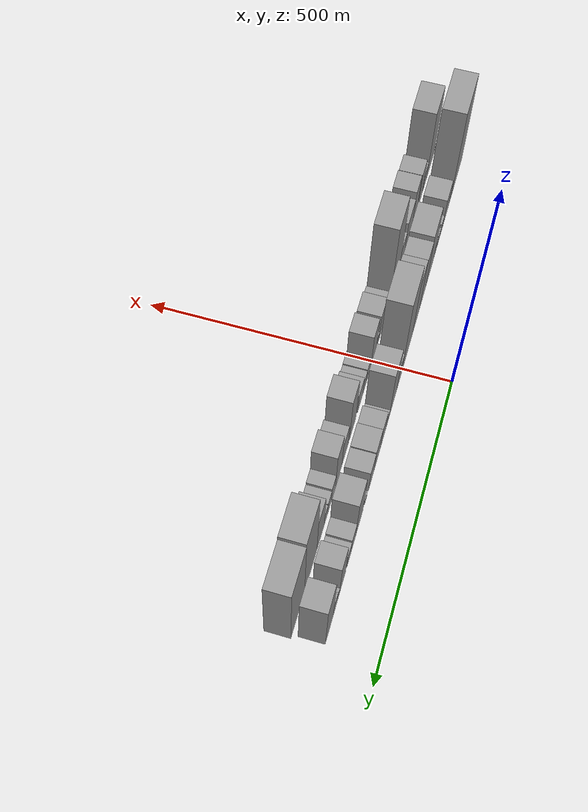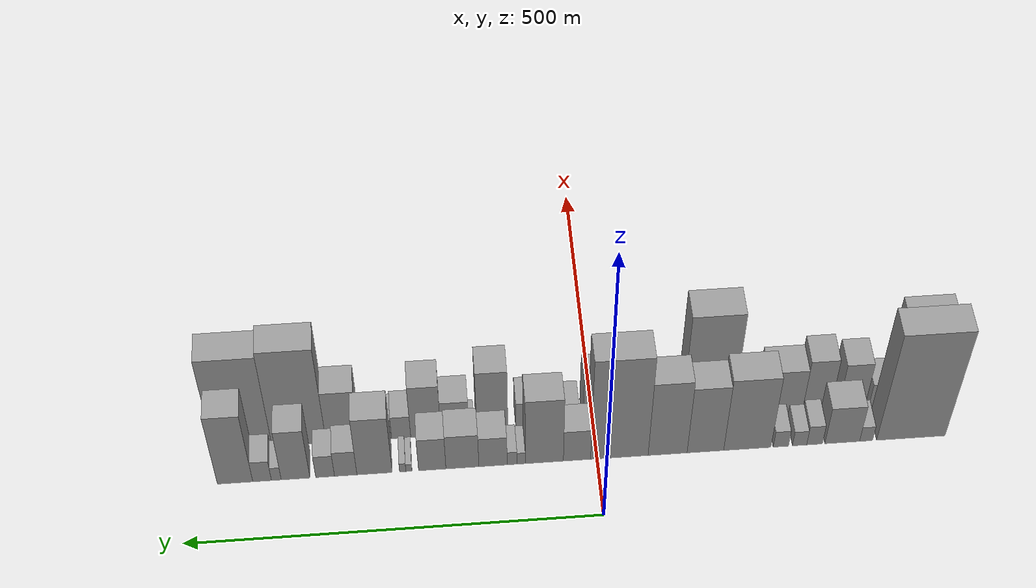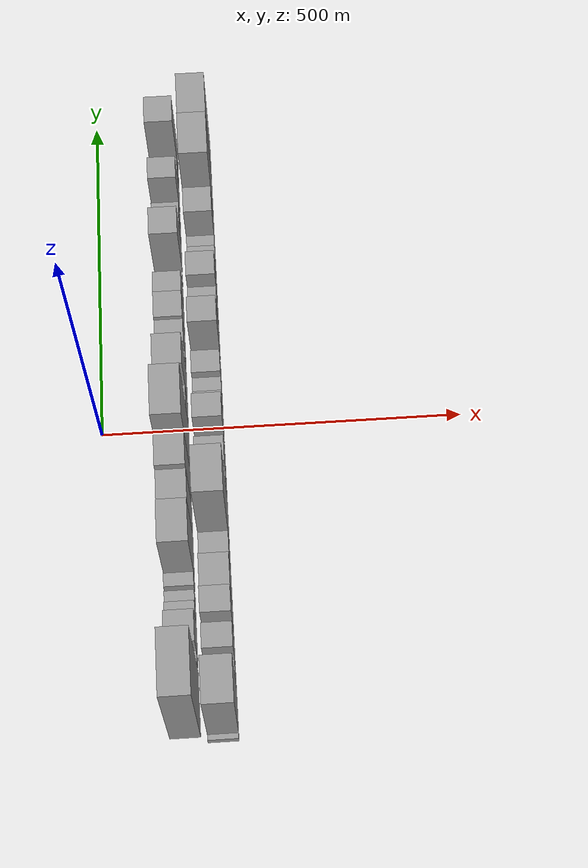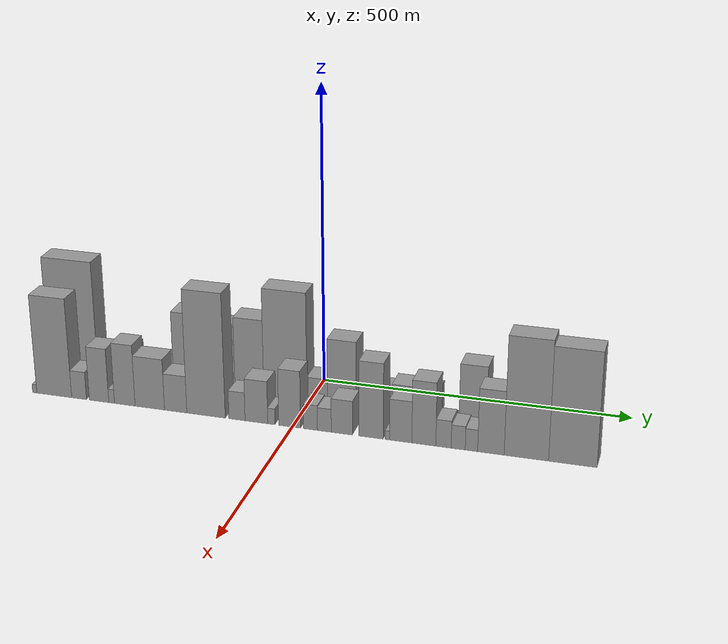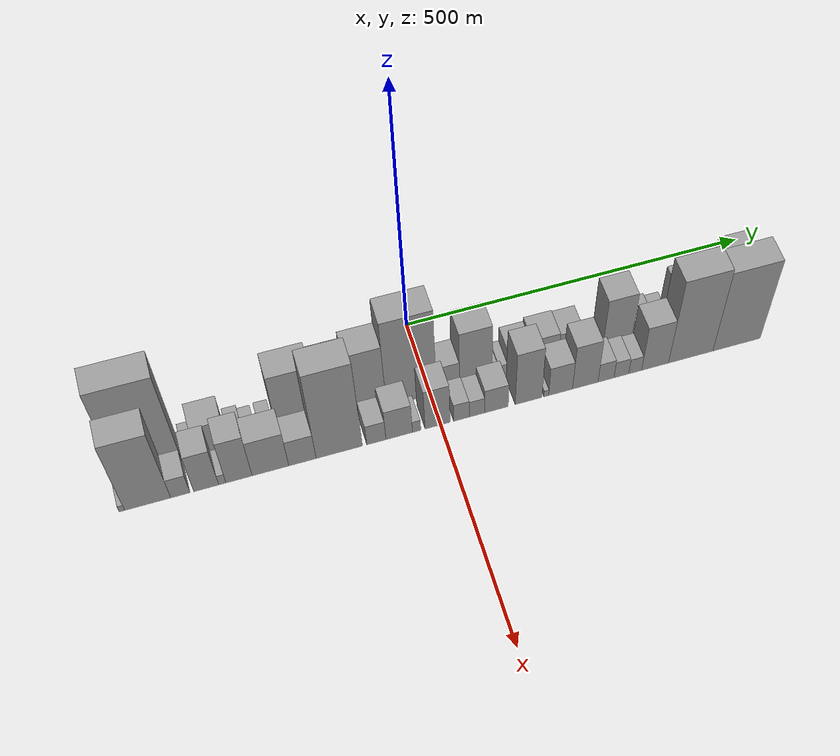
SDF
<sdf version="1.6">
 <world name="default">
  <scene>
   <sky><clouds><speed>12</speed></clouds></sky>
   <ambient>0.4 0.4 0.4 1</ambient>
   <background>0.7 0.7 0.7 1</background>
   <shadows>1</shadows>
  </scene>
  <gravity>0 0 -9.8066</gravity>
  <magnetic_field>6e-06 2.3e-05 -4.2e-05</magnetic_field>
  <physics default="0" name="default_physics" type="ode">
   <ode>
    <solver>
     <type>quick</type>
     <iters>10</iters>
     <sor>1.0</sor>
     <use_dynamic_moi_rescaling>0</use_dynamic_moi_rescaling>
    </solver>
    <constraints>
     <cfm>0</cfm>
     <erp>0.2</erp>
     <contact_max_correcting_vel>100</contact_max_correcting_vel>
     <contact_surface_layer>0.001</contact_surface_layer>
    </constraints>
   </ode>
   <max_step_size>0.004</max_step_size>
   <real_time_factor>1</real_time_factor>
   <real_time_update_rate>250</real_time_update_rate>
  </physics>
  <light name="sun" type="directional">
   <pose>0 0 10 0 0 0</pose>
   <diffuse>0.8 0.8 0.8 1</diffuse>
   <specular>0.2 0.2 0.2 1</specular>
   <attenuation>
    <range>1000</range>
    <constant>0.9</constant>
    <linear>0.01</linear>
    <quadratic>0.001</quadratic>
   </attenuation>
   <direction>-0.5 0.1 -0.9</direction>
  </light>
  <model name="building_1">
   <static>1</static>
   <pose>100.0000 -387.4000 0 0.000000 0.000000 0.000000</pose>
   <link name="link">
    <pose>0 0 108.00 0 0 0</pose>
    <collision name="collision"><geometry><box><size>40.0000 85.2000 216.0000</size></box></geometry></collision>
    <visual name="visual">
     <cast_shadows>0</cast_shadows>
     <geometry><box><size>40.0000 85.2000 216.0000</size></box></geometry>
     <material>
      <script>
       <uri>model://grey_wall/materials/scripts</uri>
       <uri>model://grey_wall/materials/textures</uri>
       <name>vrc/grey_wall</name>
      </script>
     </material>
    </visual>
   </link>
  </model>
  <model name="building_2">
   <static>1</static>
   <pose>100.0000 -331.7091 0 0.000000 0.000000 0.000000</pose>
   <link name="link">
    <pose>0 0 15.00 0 0 0</pose>
    <collision name="collision"><geometry><box><size>40.0000 16.1818 30.0000</size></box></geometry></collision>
    <visual name="visual">
     <cast_shadows>0</cast_shadows>
     <geometry><box><size>40.0000 16.1818 30.0000</size></box></geometry>
     <material>
      <script>
       <uri>model://grey_wall/materials/scripts</uri>
       <uri>model://grey_wall/materials/textures</uri>
       <name>vrc/grey_wall</name>
      </script>
     </material>
    </visual>
   </link>
  </model>
  <model name="building_3">
   <static>1</static>
   <pose>100.0000 -302.1050 0 0.000000 0.000000 0.000000</pose>
   <link name="link">
    <pose>0 0 37.50 0 0 0</pose>
    <collision name="collision"><geometry><box><size>40.0000 43.0265 75.0000</size></box></geometry></collision>
    <visual name="visual">
     <cast_shadows>0</cast_shadows>
     <geometry><box><size>40.0000 43.0265 75.0000</size></box></geometry>
     <material>
      <script>
       <uri>model://grey_wall/materials/scripts</uri>
       <uri>model://grey_wall/materials/textures</uri>
       <name>vrc/grey_wall</name>
      </script>
     </material>
    </visual>
   </link>
  </model>
  <model name="building_4">
   <static>1</static>
   <pose>100.0000 -267.8329 0 0.000000 0.000000 0.000000</pose>
   <link name="link">
    <pose>0 0 19.50 0 0 0</pose>
    <collision name="collision"><geometry><box><size>40.0000 19.5176 39.0000</size></box></geometry></collision>
    <visual name="visual">
     <cast_shadows>0</cast_shadows>
     <geometry><box><size>40.0000 19.5176 39.0000</size></box></geometry>
     <material>
      <script>
       <uri>model://grey_wall/materials/scripts</uri>
       <uri>model://grey_wall/materials/textures</uri>
       <name>vrc/grey_wall</name>
      </script>
     </material>
    </visual>
   </link>
  </model>
  <model name="building_5">
   <static>1</static>
   <pose>100.0000 -249.2946 0 0.000000 0.000000 0.000000</pose>
   <link name="link">
    <pose>0 0 15.00 0 0 0</pose>
    <collision name="collision"><geometry><box><size>40.0000 17.5591 30.0000</size></box></geometry></collision>
    <visual name="visual">
     <cast_shadows>0</cast_shadows>
     <geometry><box><size>40.0000 17.5591 30.0000</size></box></geometry>
     <material>
      <script>
       <uri>model://grey_wall/materials/scripts</uri>
       <uri>model://grey_wall/materials/textures</uri>
       <name>vrc/grey_wall</name>
      </script>
     </material>
    </visual>
   </link>
  </model>
  <model name="building_6">
   <static>1</static>
   <pose>100.0000 -226.1253 0 0.000000 0.000000 0.000000</pose>
   <link name="link">
    <pose>0 0 16.50 0 0 0</pose>
    <collision name="collision"><geometry><box><size>40.0000 18.7795 33.0000</size></box></geometry></collision>
    <visual name="visual">
     <cast_shadows>0</cast_shadows>
     <geometry><box><size>40.0000 18.7795 33.0000</size></box></geometry>
     <material>
      <script>
       <uri>model://grey_wall/materials/scripts</uri>
       <uri>model://grey_wall/materials/textures</uri>
       <name>vrc/grey_wall</name>
      </script>
     </material>
    </visual>
   </link>
  </model>
  <model name="building_7">
   <static>1</static>
   <pose>100.0000 -184.6051 0 0.000000 0.000000 0.000000</pose>
   <link name="link">
    <pose>0 0 73.50 0 0 0</pose>
    <collision name="collision"><geometry><box><size>40.0000 58.2608 147.0000</size></box></geometry></collision>
    <visual name="visual">
     <cast_shadows>0</cast_shadows>
     <geometry><box><size>40.0000 58.2608 147.0000</size></box></geometry>
     <material>
      <script>
       <uri>model://grey_wall/materials/scripts</uri>
       <uri>model://grey_wall/materials/textures</uri>
       <name>vrc/grey_wall</name>
      </script>
     </material>
    </visual>
   </link>
  </model>
  <model name="building_8">
   <static>1</static>
   <pose>100.0000 -132.9190 0 0.000000 0.000000 0.000000</pose>
   <link name="link">
    <pose>0 0 67.50 0 0 0</pose>
    <collision name="collision"><geometry><box><size>40.0000 45.1115 135.0000</size></box></geometry></collision>
    <visual name="visual">
     <cast_shadows>0</cast_shadows>
     <geometry><box><size>40.0000 45.1115 135.0000</size></box></geometry>
     <material>
      <script>
       <uri>model://grey_wall/materials/scripts</uri>
       <uri>model://grey_wall/materials/textures</uri>
       <name>vrc/grey_wall</name>
      </script>
     </material>
    </visual>
   </link>
  </model>
  <model name="building_9">
   <static>1</static>
   <pose>100.0000 -86.4252 0 0.000000 0.000000 0.000000</pose>
   <link name="link">
    <pose>0 0 75.00 0 0 0</pose>
    <collision name="collision"><geometry><box><size>40.0000 47.8762 150.0000</size></box></geometry></collision>
    <visual name="visual">
     <cast_shadows>0</cast_shadows>
     <geometry><box><size>40.0000 47.8762 150.0000</size></box></geometry>
     <material>
      <script>
       <uri>model://grey_wall/materials/scripts</uri>
       <uri>model://grey_wall/materials/textures</uri>
       <name>vrc/grey_wall</name>
      </script>
     </material>
    </visual>
   </link>
  </model>
  <model name="building_10">
   <static>1</static>
   <pose>100.0000 -27.1583 0 0.000000 0.000000 0.000000</pose>
   <link name="link">
    <pose>0 0 102.00 0 0 0</pose>
    <collision name="collision"><geometry><box><size>40.0000 70.6577 204.0000</size></box></geometry></collision>
    <visual name="visual">
     <cast_shadows>0</cast_shadows>
     <geometry><box><size>40.0000 70.6577 204.0000</size></box></geometry>
     <material>
      <script>
       <uri>model://grey_wall/materials/scripts</uri>
       <uri>model://grey_wall/materials/textures</uri>
       <name>vrc/grey_wall</name>
      </script>
     </material>
    </visual>
   </link>
  </model>
  <model name="building_11">
   <static>1</static>
   <pose>100.0000 24.7597 0 0.000000 0.000000 0.000000</pose>
   <link name="link">
    <pose>0 0 31.50 0 0 0</pose>
    <collision name="collision"><geometry><box><size>40.0000 33.1784 63.0000</size></box></geometry></collision>
    <visual name="visual">
     <cast_shadows>0</cast_shadows>
     <geometry><box><size>40.0000 33.1784 63.0000</size></box></geometry>
     <material>
      <script>
       <uri>model://grey_wall/materials/scripts</uri>
       <uri>model://grey_wall/materials/textures</uri>
       <name>vrc/grey_wall</name>
      </script>
     </material>
    </visual>
   </link>
  </model>
  <model name="building_12">
   <static>1</static>
   <pose>100.0000 64.5679 0 0.000000 0.000000 0.000000</pose>
   <link name="link">
    <pose>0 0 66.00 0 0 0</pose>
    <collision name="collision"><geometry><box><size>40.0000 46.4380 132.0000</size></box></geometry></collision>
    <visual name="visual">
     <cast_shadows>0</cast_shadows>
     <geometry><box><size>40.0000 46.4380 132.0000</size></box></geometry>
     <material>
      <script>
       <uri>model://grey_wall/materials/scripts</uri>
       <uri>model://grey_wall/materials/textures</uri>
       <name>vrc/grey_wall</name>
      </script>
     </material>
    </visual>
   </link>
  </model>
  <model name="building_13">
   <static>1</static>
   <pose>100.0000 92.8448 0 0.000000 0.000000 0.000000</pose>
   <link name="link">
    <pose>0 0 12.00 0 0 0</pose>
    <collision name="collision"><geometry><box><size>40.0000 10.1159 24.0000</size></box></geometry></collision>
    <visual name="visual">
     <cast_shadows>0</cast_shadows>
     <geometry><box><size>40.0000 10.1159 24.0000</size></box></geometry>
     <material>
      <script>
       <uri>model://grey_wall/materials/scripts</uri>
       <uri>model://grey_wall/materials/textures</uri>
       <name>vrc/grey_wall</name>
      </script>
     </material>
    </visual>
   </link>
  </model>
  <model name="building_14">
   <static>1</static>
   <pose>100.0000 103.9239 0 0.000000 0.000000 0.000000</pose>
   <link name="link">
    <pose>0 0 13.50 0 0 0</pose>
    <collision name="collision"><geometry><box><size>40.0000 12.0422 27.0000</size></box></geometry></collision>
    <visual name="visual">
     <cast_shadows>0</cast_shadows>
     <geometry><box><size>40.0000 12.0422 27.0000</size></box></geometry>
     <material>
      <script>
       <uri>model://grey_wall/materials/scripts</uri>
       <uri>model://grey_wall/materials/textures</uri>
       <name>vrc/grey_wall</name>
      </script>
     </material>
    </visual>
   </link>
  </model>
  <model name="building_15">
   <static>1</static>
   <pose>100.0000 127.2185 0 0.000000 0.000000 0.000000</pose>
   <link name="link">
    <pose>0 0 30.00 0 0 0</pose>
    <collision name="collision"><geometry><box><size>40.0000 34.5471 60.0000</size></box></geometry></collision>
    <visual name="visual">
     <cast_shadows>0</cast_shadows>
     <geometry><box><size>40.0000 34.5471 60.0000</size></box></geometry>
     <material>
      <script>
       <uri>model://grey_wall/materials/scripts</uri>
       <uri>model://grey_wall/materials/textures</uri>
       <name>vrc/grey_wall</name>
      </script>
     </material>
    </visual>
   </link>
  </model>
  <model name="building_16">
   <static>1</static>
   <pose>100.0000 164.5198 0 0.000000 0.000000 0.000000</pose>
   <link name="link">
    <pose>0 0 34.50 0 0 0</pose>
    <collision name="collision"><geometry><box><size>40.0000 40.0555 69.0000</size></box></geometry></collision>
    <visual name="visual">
     <cast_shadows>0</cast_shadows>
     <geometry><box><size>40.0000 40.0555 69.0000</size></box></geometry>
     <material>
      <script>
       <uri>model://grey_wall/materials/scripts</uri>
       <uri>model://grey_wall/materials/textures</uri>
       <name>vrc/grey_wall</name>
      </script>
     </material>
    </visual>
   </link>
  </model>
  <model name="building_17">
   <static>1</static>
   <pose>100.0000 201.1689 0 0.000000 0.000000 0.000000</pose>
   <link name="link">
    <pose>0 0 33.00 0 0 0</pose>
    <collision name="collision"><geometry><box><size>40.0000 33.2427 66.0000</size></box></geometry></collision>
    <visual name="visual">
     <cast_shadows>0</cast_shadows>
     <geometry><box><size>40.0000 33.2427 66.0000</size></box></geometry>
     <material>
      <script>
       <uri>model://grey_wall/materials/scripts</uri>
       <uri>model://grey_wall/materials/textures</uri>
       <name>vrc/grey_wall</name>
      </script>
     </material>
    </visual>
   </link>
  </model>
  <model name="building_18">
   <static>1</static>
   <pose>100.0000 229.4704 0 0.000000 0.000000 0.000000</pose>
   <link name="link">
    <pose>0 0 7.50 0 0 0</pose>
    <collision name="collision"><geometry><box><size>40.0000 7.3604 15.0000</size></box></geometry></collision>
    <visual name="visual">
     <cast_shadows>0</cast_shadows>
     <geometry><box><size>40.0000 7.3604 15.0000</size></box></geometry>
     <material>
      <script>
       <uri>model://grey_wall/materials/scripts</uri>
       <uri>model://grey_wall/materials/textures</uri>
       <name>vrc/grey_wall</name>
      </script>
     </material>
    </visual>
   </link>
  </model>
  <model name="building_19">
   <static>1</static>
   <pose>100.0000 236.9689 0 0.000000 0.000000 0.000000</pose>
   <link name="link">
    <pose>0 0 9.00 0 0 0</pose>
    <collision name="collision"><geometry><box><size>40.0000 7.6365 18.0000</size></box></geometry></collision>
    <visual name="visual">
     <cast_shadows>0</cast_shadows>
     <geometry><box><size>40.0000 7.6365 18.0000</size></box></geometry>
     <material>
      <script>
       <uri>model://grey_wall/materials/scripts</uri>
       <uri>model://grey_wall/materials/textures</uri>
       <name>vrc/grey_wall</name>
      </script>
     </material>
    </visual>
   </link>
  </model>
  <model name="building_20">
   <static>1</static>
   <pose>100.0000 271.1503 0 0.000000 0.000000 0.000000</pose>
   <link name="link">
    <pose>0 0 58.50 0 0 0</pose>
    <collision name="collision"><geometry><box><size>40.0000 42.7263 117.0000</size></box></geometry></collision>
    <visual name="visual">
     <cast_shadows>0</cast_shadows>
     <geometry><box><size>40.0000 42.7263 117.0000</size></box></geometry>
     <material>
      <script>
       <uri>model://grey_wall/materials/scripts</uri>
       <uri>model://grey_wall/materials/textures</uri>
       <name>vrc/grey_wall</name>
      </script>
     </material>
    </visual>
   </link>
  </model>
  <model name="building_21">
   <static>1</static>
   <pose>100.0000 306.0834 0 0.000000 0.000000 0.000000</pose>
   <link name="link">
    <pose>0 0 25.50 0 0 0</pose>
    <collision name="collision"><geometry><box><size>40.0000 27.1400 51.0000</size></box></geometry></collision>
    <visual name="visual">
     <cast_shadows>0</cast_shadows>
     <geometry><box><size>40.0000 27.1400 51.0000</size></box></geometry>
     <material>
      <script>
       <uri>model://grey_wall/materials/scripts</uri>
       <uri>model://grey_wall/materials/textures</uri>
       <name>vrc/grey_wall</name>
      </script>
     </material>
    </visual>
   </link>
  </model>
  <model name="building_22">
   <static>1</static>
   <pose>100.0000 330.9746 0 0.000000 0.000000 0.000000</pose>
   <link name="link">
    <pose>0 0 22.50 0 0 0</pose>
    <collision name="collision"><geometry><box><size>40.0000 22.6424 45.0000</size></box></geometry></collision>
    <visual name="visual">
     <cast_shadows>0</cast_shadows>
     <geometry><box><size>40.0000 22.6424 45.0000</size></box></geometry>
     <material>
      <script>
       <uri>model://grey_wall/materials/scripts</uri>
       <uri>model://grey_wall/materials/textures</uri>
       <name>vrc/grey_wall</name>
      </script>
     </material>
    </visual>
   </link>
  </model>
  <model name="building_23">
   <static>1</static>
   <pose>100.0000 366.6522 0 0.000000 0.000000 0.000000</pose>
   <link name="link">
    <pose>0 0 51.00 0 0 0</pose>
    <collision name="collision"><geometry><box><size>40.0000 34.7127 102.0000</size></box></geometry></collision>
    <visual name="visual">
     <cast_shadows>0</cast_shadows>
     <geometry><box><size>40.0000 34.7127 102.0000</size></box></geometry>
     <material>
      <script>
       <uri>model://grey_wall/materials/scripts</uri>
       <uri>model://grey_wall/materials/textures</uri>
       <name>vrc/grey_wall</name>
      </script>
     </material>
    </visual>
   </link>
  </model>
  <model name="building_24">
   <static>1</static>
   <pose>100.0000 389.9149 0 0.000000 0.000000 0.000000</pose>
   <link name="link">
    <pose>0 0 13.50 0 0 0</pose>
    <collision name="collision"><geometry><box><size>40.0000 11.8127 27.0000</size></box></geometry></collision>
    <visual name="visual">
     <cast_shadows>0</cast_shadows>
     <geometry><box><size>40.0000 11.8127 27.0000</size></box></geometry>
     <material>
      <script>
       <uri>model://grey_wall/materials/scripts</uri>
       <uri>model://grey_wall/materials/textures</uri>
       <name>vrc/grey_wall</name>
      </script>
     </material>
    </visual>
   </link>
  </model>
  <model name="building_25">
   <static>1</static>
   <pose>100.0000 407.0484 0 0.000000 0.000000 0.000000</pose>
   <link name="link">
    <pose>0 0 21.00 0 0 0</pose>
    <collision name="collision"><geometry><box><size>40.0000 22.4544 42.0000</size></box></geometry></collision>
    <visual name="visual">
     <cast_shadows>0</cast_shadows>
     <geometry><box><size>40.0000 22.4544 42.0000</size></box></geometry>
     <material>
      <script>
       <uri>model://grey_wall/materials/scripts</uri>
       <uri>model://grey_wall/materials/textures</uri>
       <name>vrc/grey_wall</name>
      </script>
     </material>
    </visual>
   </link>
  </model>
  <model name="building_26">
   <static>1</static>
   <pose>100.0000 439.5276 0 0.000000 0.000000 0.000000</pose>
   <link name="link">
    <pose>0 0 70.50 0 0 0</pose>
    <collision name="collision"><geometry><box><size>40.0000 42.5039 141.0000</size></box></geometry></collision>
    <visual name="visual">
     <cast_shadows>0</cast_shadows>
     <geometry><box><size>40.0000 42.5039 141.0000</size></box></geometry>
     <material>
      <script>
       <uri>model://grey_wall/materials/scripts</uri>
       <uri>model://grey_wall/materials/textures</uri>
       <name>vrc/grey_wall</name>
      </script>
     </material>
    </visual>
   </link>
  </model>
  <model name="building_27">
   <static>1</static>
   <pose>149.0000 -434.3320 0 0.000000 0.000000 0.000000</pose>
   <link name="link">
    <pose>0 0 7.50 0 0 0</pose>
    <collision name="collision"><geometry><box><size>40.0000 7.3361 15.0000</size></box></geometry></collision>
    <visual name="visual">
     <cast_shadows>0</cast_shadows>
     <geometry><box><size>40.0000 7.3361 15.0000</size></box></geometry>
     <material>
      <script>
       <uri>model://grey_wall/materials/scripts</uri>
       <uri>model://grey_wall/materials/textures</uri>
       <name>vrc/grey_wall</name>
      </script>
     </material>
    </visual>
   </link>
  </model>
  <model name="building_28">
   <static>1</static>
   <pose>149.0000 -400.1671 0 0.000000 0.000000 0.000000</pose>
   <link name="link">
    <pose>0 0 85.50 0 0 0</pose>
    <collision name="collision"><geometry><box><size>40.0000 60.9936 171.0000</size></box></geometry></collision>
    <visual name="visual">
     <cast_shadows>0</cast_shadows>
     <geometry><box><size>40.0000 60.9936 171.0000</size></box></geometry>
     <material>
      <script>
       <uri>model://grey_wall/materials/scripts</uri>
       <uri>model://grey_wall/materials/textures</uri>
       <name>vrc/grey_wall</name>
      </script>
     </material>
    </visual>
   </link>
  </model>
  <model name="building_29">
   <static>1</static>
   <pose>149.0000 -356.8182 0 0.000000 0.000000 0.000000</pose>
   <link name="link">
    <pose>0 0 24.00 0 0 0</pose>
    <collision name="collision"><geometry><box><size>40.0000 25.7042 48.0000</size></box></geometry></collision>
    <visual name="visual">
     <cast_shadows>0</cast_shadows>
     <geometry><box><size>40.0000 25.7042 48.0000</size></box></geometry>
     <material>
      <script>
       <uri>model://grey_wall/materials/scripts</uri>
       <uri>model://grey_wall/materials/textures</uri>
       <name>vrc/grey_wall</name>
      </script>
     </material>
    </visual>
   </link>
  </model>
  <model name="building_30">
   <static>1</static>
   <pose>149.0000 -322.2573 0 0.000000 0.000000 0.000000</pose>
   <link name="link">
    <pose>0 0 46.50 0 0 0</pose>
    <collision name="collision"><geometry><box><size>40.0000 33.4176 93.0000</size></box></geometry></collision>
    <visual name="visual">
     <cast_shadows>0</cast_shadows>
     <geometry><box><size>40.0000 33.4176 93.0000</size></box></geometry>
     <material>
      <script>
       <uri>model://grey_wall/materials/scripts</uri>
       <uri>model://grey_wall/materials/textures</uri>
       <name>vrc/grey_wall</name>
      </script>
     </material>
    </visual>
   </link>
  </model>
  <model name="building_31">
   <static>1</static>
   <pose>149.0000 -300.6832 0 0.000000 0.000000 0.000000</pose>
   <link name="link">
    <pose>0 0 12.00 0 0 0</pose>
    <collision name="collision"><geometry><box><size>40.0000 9.7306 24.0000</size></box></geometry></collision>
    <visual name="visual">
     <cast_shadows>0</cast_shadows>
     <geometry><box><size>40.0000 9.7306 24.0000</size></box></geometry>
     <material>
      <script>
       <uri>model://grey_wall/materials/scripts</uri>
       <uri>model://grey_wall/materials/textures</uri>
       <name>vrc/grey_wall</name>
      </script>
     </material>
    </visual>
   </link>
  </model>
  <model name="building_32">
   <static>1</static>
   <pose>149.0000 -278.1895 0 0.000000 0.000000 0.000000</pose>
   <link name="link">
    <pose>0 0 52.50 0 0 0</pose>
    <collision name="collision"><geometry><box><size>40.0000 35.2567 105.0000</size></box></geometry></collision>
    <visual name="visual">
     <cast_shadows>0</cast_shadows>
     <geometry><box><size>40.0000 35.2567 105.0000</size></box></geometry>
     <material>
      <script>
       <uri>model://grey_wall/materials/scripts</uri>
       <uri>model://grey_wall/materials/textures</uri>
       <name>vrc/grey_wall</name>
      </script>
     </material>
    </visual>
   </link>
  </model>
  <model name="building_33">
   <static>1</static>
   <pose>149.0000 -235.6582 0 0.000000 0.000000 0.000000</pose>
   <link name="link">
    <pose>0 0 43.50 0 0 0</pose>
    <collision name="collision"><geometry><box><size>40.0000 49.8059 87.0000</size></box></geometry></collision>
    <visual name="visual">
     <cast_shadows>0</cast_shadows>
     <geometry><box><size>40.0000 49.8059 87.0000</size></box></geometry>
     <material>
      <script>
       <uri>model://grey_wall/materials/scripts</uri>
       <uri>model://grey_wall/materials/textures</uri>
       <name>vrc/grey_wall</name>
      </script>
     </material>
    </visual>
   </link>
  </model>
  <model name="building_34">
   <static>1</static>
   <pose>149.0000 -192.0191 0 0.000000 0.000000 0.000000</pose>
   <link name="link">
    <pose>0 0 31.50 0 0 0</pose>
    <collision name="collision"><geometry><box><size>40.0000 37.4722 63.0000</size></box></geometry></collision>
    <visual name="visual">
     <cast_shadows>0</cast_shadows>
     <geometry><box><size>40.0000 37.4722 63.0000</size></box></geometry>
     <material>
      <script>
       <uri>model://grey_wall/materials/scripts</uri>
       <uri>model://grey_wall/materials/textures</uri>
       <name>vrc/grey_wall</name>
      </script>
     </material>
    </visual>
   </link>
  </model>
  <model name="building_35">
   <static>1</static>
   <pose>149.0000 -141.4146 0 0.000000 0.000000 0.000000</pose>
   <link name="link">
    <pose>0 0 105.00 0 0 0</pose>
    <collision name="collision"><geometry><box><size>40.0000 63.7368 210.0000</size></box></geometry></collision>
    <visual name="visual">
     <cast_shadows>0</cast_shadows>
     <geometry><box><size>40.0000 63.7368 210.0000</size></box></geometry>
     <material>
      <script>
       <uri>model://grey_wall/materials/scripts</uri>
       <uri>model://grey_wall/materials/textures</uri>
       <name>vrc/grey_wall</name>
      </script>
     </material>
    </visual>
   </link>
  </model>
  <model name="building_36">
   <static>1</static>
   <pose>149.0000 -90.2523 0 0.000000 0.000000 0.000000</pose>
   <link name="link">
    <pose>0 0 24.00 0 0 0</pose>
    <collision name="collision"><geometry><box><size>40.0000 26.5877 48.0000</size></box></geometry></collision>
    <visual name="visual">
     <cast_shadows>0</cast_shadows>
     <geometry><box><size>40.0000 26.5877 48.0000</size></box></geometry>
     <material>
      <script>
       <uri>model://grey_wall/materials/scripts</uri>
       <uri>model://grey_wall/materials/textures</uri>
       <name>vrc/grey_wall</name>
      </script>
     </material>
    </visual>
   </link>
  </model>
  <model name="building_37">
   <static>1</static>
   <pose>149.0000 -58.4449 0 0.000000 0.000000 0.000000</pose>
   <link name="link">
    <pose>0 0 36.00 0 0 0</pose>
    <collision name="collision"><geometry><box><size>40.0000 37.0271 72.0000</size></box></geometry></collision>
    <visual name="visual">
     <cast_shadows>0</cast_shadows>
     <geometry><box><size>40.0000 37.0271 72.0000</size></box></geometry>
     <material>
      <script>
       <uri>model://grey_wall/materials/scripts</uri>
       <uri>model://grey_wall/materials/textures</uri>
       <name>vrc/grey_wall</name>
      </script>
     </material>
    </visual>
   </link>
  </model>
  <model name="building_38">
   <static>1</static>
   <pose>149.0000 -34.0899 0 0.000000 0.000000 0.000000</pose>
   <link name="link">
    <pose>0 0 13.50 0 0 0</pose>
    <collision name="collision"><geometry><box><size>40.0000 11.6829 27.0000</size></box></geometry></collision>
    <visual name="visual">
     <cast_shadows>0</cast_shadows>
     <geometry><box><size>40.0000 11.6829 27.0000</size></box></geometry>
     <material>
      <script>
       <uri>model://grey_wall/materials/scripts</uri>
       <uri>model://grey_wall/materials/textures</uri>
       <name>vrc/grey_wall</name>
      </script>
     </material>
    </visual>
   </link>
  </model>
  <model name="building_39">
   <static>1</static>
   <pose>149.0000 -4.6507 0 0.000000 0.000000 0.000000</pose>
   <link name="link">
    <pose>0 0 48.00 0 0 0</pose>
    <collision name="collision"><geometry><box><size>40.0000 35.1954 96.0000</size></box></geometry></collision>
    <visual name="visual">
     <cast_shadows>0</cast_shadows>
     <geometry><box><size>40.0000 35.1954 96.0000</size></box></geometry>
     <material>
      <script>
       <uri>model://grey_wall/materials/scripts</uri>
       <uri>model://grey_wall/materials/textures</uri>
       <name>vrc/grey_wall</name>
      </script>
     </material>
    </visual>
   </link>
  </model>
  <model name="building_40">
   <static>1</static>
   <pose>149.0000 28.9788 0 0.000000 0.000000 0.000000</pose>
   <link name="link">
    <pose>0 0 21.00 0 0 0</pose>
    <collision name="collision"><geometry><box><size>40.0000 22.0636 42.0000</size></box></geometry></collision>
    <visual name="visual">
     <cast_shadows>0</cast_shadows>
     <geometry><box><size>40.0000 22.0636 42.0000</size></box></geometry>
     <material>
      <script>
       <uri>model://grey_wall/materials/scripts</uri>
       <uri>model://grey_wall/materials/textures</uri>
       <name>vrc/grey_wall</name>
      </script>
     </material>
    </visual>
   </link>
  </model>
  <model name="building_41">
   <static>1</static>
   <pose>149.0000 51.0014 0 0.000000 0.000000 0.000000</pose>
   <link name="link">
    <pose>0 0 19.50 0 0 0</pose>
    <collision name="collision"><geometry><box><size>40.0000 21.9815 39.0000</size></box></geometry></collision>
    <visual name="visual">
     <cast_shadows>0</cast_shadows>
     <geometry><box><size>40.0000 21.9815 39.0000</size></box></geometry>
     <material>
      <script>
       <uri>model://grey_wall/materials/scripts</uri>
       <uri>model://grey_wall/materials/textures</uri>
       <name>vrc/grey_wall</name>
      </script>
     </material>
    </visual>
   </link>
  </model>
  <model name="building_42">
   <static>1</static>
   <pose>149.0000 78.7665 0 0.000000 0.000000 0.000000</pose>
   <link name="link">
    <pose>0 0 28.50 0 0 0</pose>
    <collision name="collision"><geometry><box><size>40.0000 33.5487 57.0000</size></box></geometry></collision>
    <visual name="visual">
     <cast_shadows>0</cast_shadows>
     <geometry><box><size>40.0000 33.5487 57.0000</size></box></geometry>
     <material>
      <script>
       <uri>model://grey_wall/materials/scripts</uri>
       <uri>model://grey_wall/materials/textures</uri>
       <name>vrc/grey_wall</name>
      </script>
     </material>
    </visual>
   </link>
  </model>
  <model name="building_43">
   <static>1</static>
   <pose>149.0000 124.7033 0 0.000000 0.000000 0.000000</pose>
   <link name="link">
    <pose>0 0 63.00 0 0 0</pose>
    <collision name="collision"><geometry><box><size>40.0000 38.3250 126.0000</size></box></geometry></collision>
    <visual name="visual">
     <cast_shadows>0</cast_shadows>
     <geometry><box><size>40.0000 38.3250 126.0000</size></box></geometry>
     <material>
      <script>
       <uri>model://grey_wall/materials/scripts</uri>
       <uri>model://grey_wall/materials/textures</uri>
       <name>vrc/grey_wall</name>
      </script>
     </material>
    </visual>
   </link>
  </model>
  <model name="building_44">
   <static>1</static>
   <pose>149.0000 150.2373 0 0.000000 0.000000 0.000000</pose>
   <link name="link">
    <pose>0 0 7.50 0 0 0</pose>
    <collision name="collision"><geometry><box><size>40.0000 6.7431 15.0000</size></box></geometry></collision>
    <visual name="visual">
     <cast_shadows>0</cast_shadows>
     <geometry><box><size>40.0000 6.7431 15.0000</size></box></geometry>
     <material>
      <script>
       <uri>model://grey_wall/materials/scripts</uri>
       <uri>model://grey_wall/materials/textures</uri>
       <name>vrc/grey_wall</name>
      </script>
     </material>
    </visual>
   </link>
  </model>
  <model name="building_45">
   <static>1</static>
   <pose>149.0000 170.9236 0 0.000000 0.000000 0.000000</pose>
   <link name="link">
    <pose>0 0 34.50 0 0 0</pose>
    <collision name="collision"><geometry><box><size>40.0000 34.6294 69.0000</size></box></geometry></collision>
    <visual name="visual">
     <cast_shadows>0</cast_shadows>
     <geometry><box><size>40.0000 34.6294 69.0000</size></box></geometry>
     <material>
      <script>
       <uri>model://grey_wall/materials/scripts</uri>
       <uri>model://grey_wall/materials/textures</uri>
       <name>vrc/grey_wall</name>
      </script>
     </material>
    </visual>
   </link>
  </model>
  <model name="building_46">
   <static>1</static>
   <pose>149.0000 206.7712 0 0.000000 0.000000 0.000000</pose>
   <link name="link">
    <pose>0 0 52.50 0 0 0</pose>
    <collision name="collision"><geometry><box><size>40.0000 37.0657 105.0000</size></box></geometry></collision>
    <visual name="visual">
     <cast_shadows>0</cast_shadows>
     <geometry><box><size>40.0000 37.0657 105.0000</size></box></geometry>
     <material>
      <script>
       <uri>model://grey_wall/materials/scripts</uri>
       <uri>model://grey_wall/materials/textures</uri>
       <name>vrc/grey_wall</name>
      </script>
     </material>
    </visual>
   </link>
  </model>
  <model name="building_47">
   <static>1</static>
   <pose>149.0000 237.0606 0 0.000000 0.000000 0.000000</pose>
   <link name="link">
    <pose>0 0 22.50 0 0 0</pose>
    <collision name="collision"><geometry><box><size>40.0000 23.5131 45.0000</size></box></geometry></collision>
    <visual name="visual">
     <cast_shadows>0</cast_shadows>
     <geometry><box><size>40.0000 23.5131 45.0000</size></box></geometry>
     <material>
      <script>
       <uri>model://grey_wall/materials/scripts</uri>
       <uri>model://grey_wall/materials/textures</uri>
       <name>vrc/grey_wall</name>
      </script>
     </material>
    </visual>
   </link>
  </model>
  <model name="building_48">
   <static>1</static>
   <pose>149.0000 259.5003 0 0.000000 0.000000 0.000000</pose>
   <link name="link">
    <pose>0 0 19.50 0 0 0</pose>
    <collision name="collision"><geometry><box><size>40.0000 21.3663 39.0000</size></box></geometry></collision>
    <visual name="visual">
     <cast_shadows>0</cast_shadows>
     <geometry><box><size>40.0000 21.3663 39.0000</size></box></geometry>
     <material>
      <script>
       <uri>model://grey_wall/materials/scripts</uri>
       <uri>model://grey_wall/materials/textures</uri>
       <name>vrc/grey_wall</name>
      </script>
     </material>
    </visual>
   </link>
  </model>
  <model name="building_49">
   <static>1</static>
   <pose>149.0000 279.6127 0 0.000000 0.000000 0.000000</pose>
   <link name="link">
    <pose>0 0 18.00 0 0 0</pose>
    <collision name="collision"><geometry><box><size>40.0000 18.8584 36.0000</size></box></geometry></collision>
    <visual name="visual">
     <cast_shadows>0</cast_shadows>
     <geometry><box><size>40.0000 18.8584 36.0000</size></box></geometry>
     <material>
      <script>
       <uri>model://grey_wall/materials/scripts</uri>
       <uri>model://grey_wall/materials/textures</uri>
       <name>vrc/grey_wall</name>
      </script>
     </material>
    </visual>
   </link>
  </model>
  <model name="building_50">
   <static>1</static>
   <pose>149.0000 309.0005 0 0.000000 0.000000 0.000000</pose>
   <link name="link">
    <pose>0 0 52.50 0 0 0</pose>
    <collision name="collision"><geometry><box><size>40.0000 39.9173 105.0000</size></box></geometry></collision>
    <visual name="visual">
     <cast_shadows>0</cast_shadows>
     <geometry><box><size>40.0000 39.9173 105.0000</size></box></geometry>
     <material>
      <script>
       <uri>model://grey_wall/materials/scripts</uri>
       <uri>model://grey_wall/materials/textures</uri>
       <name>vrc/grey_wall</name>
      </script>
     </material>
    </visual>
   </link>
  </model>
  <model name="building_51">
   <static>1</static>
   <pose>149.0000 362.0565 0 0.000000 0.000000 0.000000</pose>
   <link name="link">
    <pose>0 0 97.50 0 0 0</pose>
    <collision name="collision"><geometry><box><size>40.0000 66.1948 195.0000</size></box></geometry></collision>
    <visual name="visual">
     <cast_shadows>0</cast_shadows>
     <geometry><box><size>40.0000 66.1948 195.0000</size></box></geometry>
     <material>
      <script>
       <uri>model://grey_wall/materials/scripts</uri>
       <uri>model://grey_wall/materials/textures</uri>
       <name>vrc/grey_wall</name>
      </script>
     </material>
    </visual>
   </link>
  </model>
  <model name="building_52">
   <static>1</static>
   <pose>149.0000 430.7747 0 0.000000 0.000000 0.000000</pose>
   <link name="link">
    <pose>0 0 93.00 0 0 0</pose>
    <collision name="collision"><geometry><box><size>40.0000 71.2416 186.0000</size></box></geometry></collision>
    <visual name="visual">
     <cast_shadows>0</cast_shadows>
     <geometry><box><size>40.0000 71.2416 186.0000</size></box></geometry>
     <material>
      <script>
       <uri>model://grey_wall/materials/scripts</uri>
       <uri>model://grey_wall/materials/textures</uri>
       <name>vrc/grey_wall</name>
      </script>
     </material>
    </visual>
   </link>
  </model>
 </world>
</sdf>
